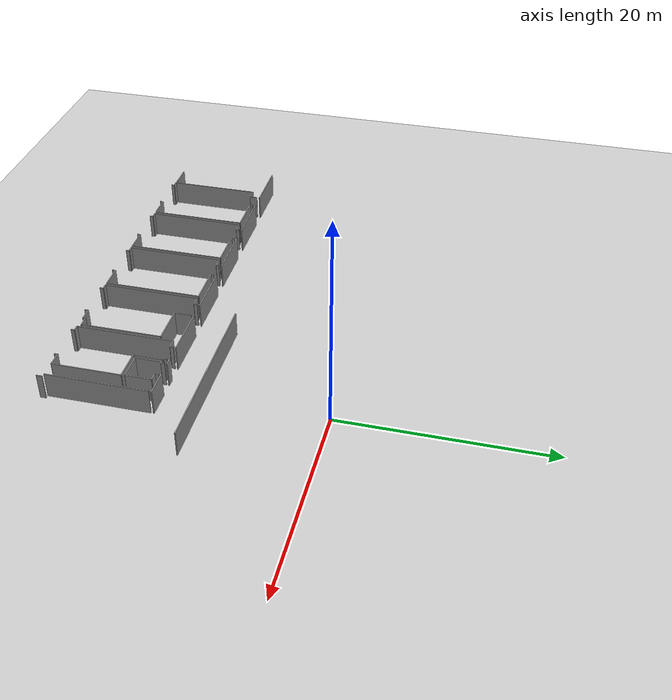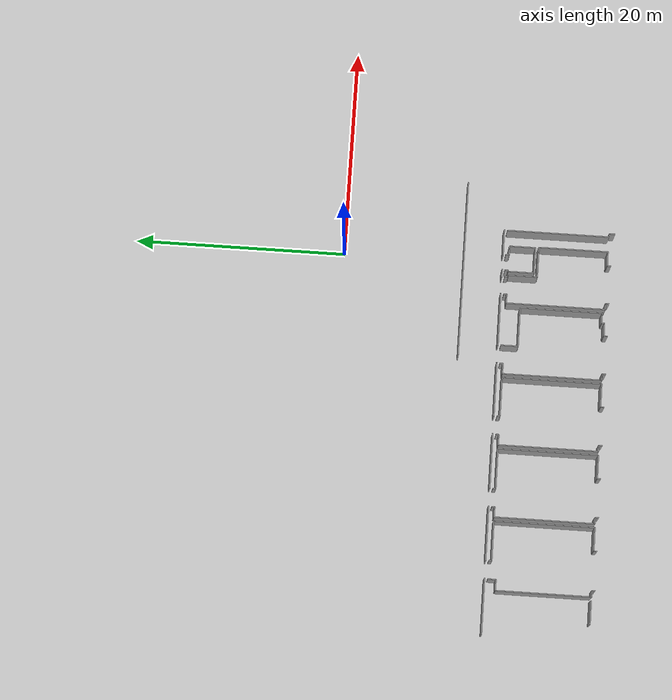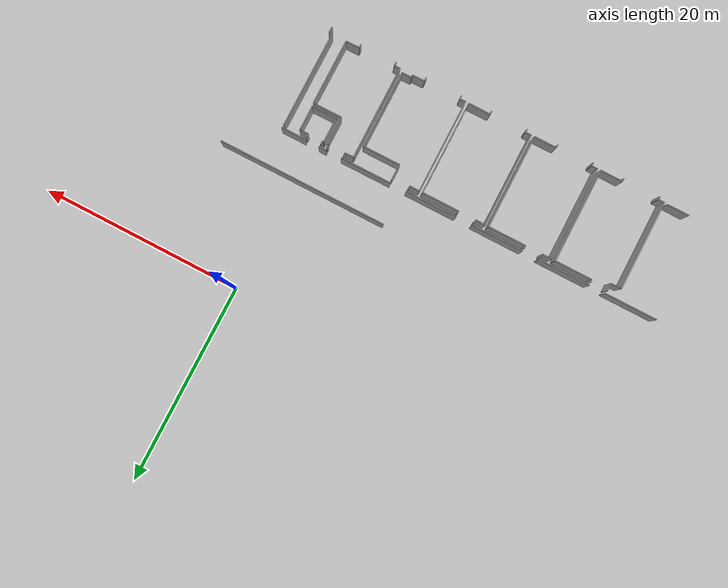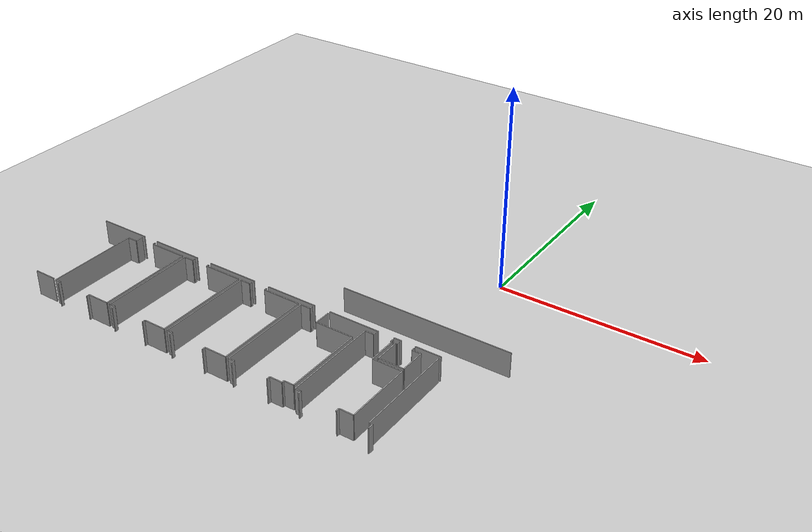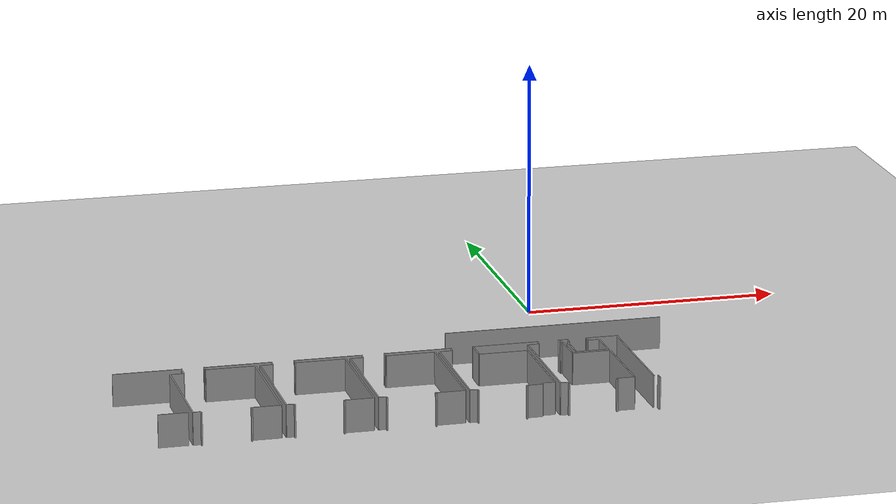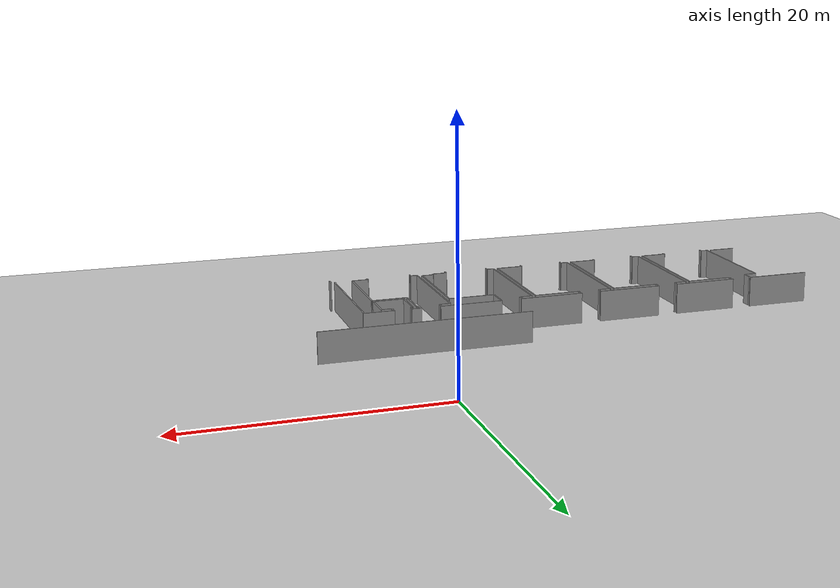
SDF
<sdf version="1.6">
 <world name="default">
  <model name="ground_plane">
   <static>1</static>
   <link name="link">
    <collision name="collision">
     <geometry><plane><normal>0 0 1</normal><size>100 100</size></plane></geometry>
     <surface><friction><ode><mu>100</mu><mu2>50</mu2></ode></friction></surface>
    </collision>
    <visual name="visual">
     <cast_shadows>0</cast_shadows>
     <geometry><plane><normal>0 0 1</normal><size>100 100</size></plane></geometry>
     <material>
      <script><uri>file://media/materials/scripts/gazebo.material</uri><name>Gazebo/Grey</name></script>
     </material>
    </visual>
   </link>
  </model>
  <model name="50045367">
   <static>1</static>
   <link name="Wall_307">
    <collision name="Wall_307_Collision">
     <geometry><box><size>2.2219116825 0.1 2.5</size></box></geometry>
     <pose>1.11095584125 0 1.25 0 0 0</pose>
    </collision>
    <visual name="Wall_307_Visual">
     <pose>1.11095584125 0 1.25 0 0 0</pose>
     <geometry><box><size>2.2219116825 0.1 2.5</size></box></geometry>
     <material>
      <script><uri>file://media/materials/scripts/gazebo.material</uri><name>Gazebo/Grey</name></script>
      <ambient>1 1 1 1</ambient>
     </material>
    </visual>
    <pose>21.3072310585 -50.686137507 0 0 0 3.14159265359</pose>
   </link>
   <link name="Wall_314">
    <collision name="Wall_314_Collision">
     <geometry><box><size>8.93782712536 0.1 2.5</size></box></geometry>
     <pose>4.46891356268 0 1.25 0 0 0</pose>
    </collision>
    <visual name="Wall_314_Visual">
     <pose>4.46891356268 0 1.25 0 0 0</pose>
     <geometry><box><size>8.93782712536 0.1 2.5</size></box></geometry>
     <material>
      <script><uri>file://media/materials/scripts/gazebo.material</uri><name>Gazebo/Grey</name></script>
      <ambient>1 1 1 1</ambient>
     </material>
    </visual>
    <pose>21.6329589918 -50.7195487576 0 0 0 1.57079632679</pose>
   </link>
   <link name="Wall_315">
    <collision name="Wall_315_Collision">
     <geometry><box><size>1.02749123431 0.1 2.5</size></box></geometry>
     <pose>0.513745617155 0 1.25 0 0 0</pose>
    </collision>
    <visual name="Wall_315_Visual">
     <pose>0.513745617155 0 1.25 0 0 0</pose>
     <geometry><box><size>1.02749123431 0.1 2.5</size></box></geometry>
     <material>
      <script><uri>file://media/materials/scripts/gazebo.material</uri><name>Gazebo/Grey</name></script>
      <ambient>1 1 1 1</ambient>
     </material>
    </visual>
    <pose>21.6329589918 -41.7817216322 0 0 0 0.0</pose>
   </link>
   <link name="Wall_316">
    <collision name="Wall_316_Collision">
     <geometry><box><size>0.768458763149 0.1 2.5</size></box></geometry>
     <pose>0.384229381574 0 1.25 0 0 0</pose>
    </collision>
    <visual name="Wall_316_Visual">
     <pose>0.384229381574 0 1.25 0 0 0</pose>
     <geometry><box><size>0.768458763149 0.1 2.5</size></box></geometry>
     <material>
      <script><uri>file://media/materials/scripts/gazebo.material</uri><name>Gazebo/Grey</name></script>
      <ambient>1 1 1 1</ambient>
     </material>
    </visual>
    <pose>22.6604502261 -41.7817216322 0 0 0 1.57079632679</pose>
   </link>
   <link name="Wall_317">
    <collision name="Wall_317_Collision">
     <geometry><box><size>0.274023070278 0.1 2.5</size></box></geometry>
     <pose>0.137011535139 0 1.25 0 0 0</pose>
    </collision>
    <visual name="Wall_317_Visual">
     <pose>0.137011535139 0 1.25 0 0 0</pose>
     <geometry><box><size>0.274023070278 0.1 2.5</size></box></geometry>
     <material>
      <script><uri>file://media/materials/scripts/gazebo.material</uri><name>Gazebo/Grey</name></script>
      <ambient>1 1 1 1</ambient>
     </material>
    </visual>
    <pose>24.3912292291 -41.013262869 0 0 0 -1.57079632679</pose>
   </link>
   <link name="Wall_318">
    <collision name="Wall_318_Collision">
     <geometry><box><size>3.72745058184 0.1 2.5</size></box></geometry>
     <pose>1.86372529092 0 1.25 0 0 0</pose>
    </collision>
    <visual name="Wall_318_Visual">
     <pose>1.86372529092 0 1.25 0 0 0</pose>
     <geometry><box><size>3.72745058184 0.1 2.5</size></box></geometry>
     <material>
      <script><uri>file://media/materials/scripts/gazebo.material</uri><name>Gazebo/Grey</name></script>
      <ambient>1 1 1 1</ambient>
     </material>
    </visual>
    <pose>24.3912292291 -41.2872859393 0 0 0 0.0</pose>
   </link>
   <link name="Wall_319">
    <collision name="Wall_319_Collision">
     <geometry><box><size>9.4199400376 0.1 2.5</size></box></geometry>
     <pose>4.7099700188 0 1.25 0 0 0</pose>
    </collision>
    <visual name="Wall_319_Visual">
     <pose>4.7099700188 0 1.25 0 0 0</pose>
     <geometry><box><size>9.4199400376 0.1 2.5</size></box></geometry>
     <material>
      <script><uri>file://media/materials/scripts/gazebo.material</uri><name>Gazebo/Grey</name></script>
      <ambient>1 1 1 1</ambient>
     </material>
    </visual>
    <pose>28.118679811 -41.2872859393 0 0 0 -1.57079632679</pose>
   </link>
   <link name="Wall_320">
    <collision name="Wall_320_Collision">
     <geometry><box><size>2.20577773261 0.1 2.5</size></box></geometry>
     <pose>1.1028888663 0 1.25 0 0 0</pose>
    </collision>
    <visual name="Wall_320_Visual">
     <pose>1.1028888663 0 1.25 0 0 0</pose>
     <geometry><box><size>2.20577773261 0.1 2.5</size></box></geometry>
     <material>
      <script><uri>file://media/materials/scripts/gazebo.material</uri><name>Gazebo/Grey</name></script>
      <ambient>1 1 1 1</ambient>
     </material>
    </visual>
    <pose>28.118679811 -50.7072259769 0 0 0 3.14159265359</pose>
   </link>
   <link name="Wall_321">
    <collision name="Wall_321_Collision">
     <geometry><box><size>0.315818893236 0.1 2.5</size></box></geometry>
     <pose>0.157909446618 0 1.25 0 0 0</pose>
    </collision>
    <visual name="Wall_321_Visual">
     <pose>0.157909446618 0 1.25 0 0 0</pose>
     <geometry><box><size>0.315818893236 0.1 2.5</size></box></geometry>
     <material>
      <script><uri>file://media/materials/scripts/gazebo.material</uri><name>Gazebo/Grey</name></script>
      <ambient>1 1 1 1</ambient>
     </material>
    </visual>
    <pose>25.9129020784 -50.7072259769 0 0 0 -1.57079632679</pose>
   </link>
   <link name="Wall_322">
    <collision name="Wall_322_Collision">
     <geometry><box><size>0.288632552467 0.1 2.5</size></box></geometry>
     <pose>0.144316276234 0 1.25 0 0 0</pose>
    </collision>
    <visual name="Wall_322_Visual">
     <pose>0.144316276234 0 1.25 0 0 0</pose>
     <geometry><box><size>0.288632552467 0.1 2.5</size></box></geometry>
     <material>
      <script><uri>file://media/materials/scripts/gazebo.material</uri><name>Gazebo/Grey</name></script>
      <ambient>1 1 1 1</ambient>
     </material>
    </visual>
    <pose>22.2309314498 -51.0230448702 0 0 0 1.57079632679</pose>
   </link>
   <link name="Wall_323">
    <collision name="Wall_323_Collision">
     <geometry><box><size>0.598157158184 0.1 2.5</size></box></geometry>
     <pose>0.299078579092 0 1.25 0 0 0</pose>
    </collision>
    <visual name="Wall_323_Visual">
     <pose>0.299078579092 0 1.25 0 0 0</pose>
     <geometry><box><size>0.598157158184 0.1 2.5</size></box></geometry>
     <material>
      <script><uri>file://media/materials/scripts/gazebo.material</uri><name>Gazebo/Grey</name></script>
      <ambient>1 1 1 1</ambient>
     </material>
    </visual>
    <pose>22.2309314498 -50.7344123177 0 0 0 3.11674117435</pose>
   </link>
   <link name="Wall_324">
    <collision name="Wall_324_Collision">
     <geometry><box><size>9.41053915341 0.1 2.5</size></box></geometry>
     <pose>4.70526957671 0 1.25 0 0 0</pose>
    </collision>
    <visual name="Wall_324_Visual">
     <pose>4.70526957671 0 1.25 0 0 0</pose>
     <geometry><box><size>9.41053915341 0.1 2.5</size></box></geometry>
     <material>
      <script><uri>file://media/materials/scripts/gazebo.material</uri><name>Gazebo/Grey</name></script>
      <ambient>1 1 1 1</ambient>
     </material>
    </visual>
    <pose>28.471975202 -50.6998577163 0 0 0 1.57079632679</pose>
   </link>
   <link name="Wall_325">
    <collision name="Wall_325_Collision">
     <geometry><box><size>0.966004370141 0.1 2.5</size></box></geometry>
     <pose>0.48300218507 0 1.25 0 0 0</pose>
    </collision>
    <visual name="Wall_325_Visual">
     <pose>0.48300218507 0 1.25 0 0 0</pose>
     <geometry><box><size>0.966004370141 0.1 2.5</size></box></geometry>
     <material>
      <script><uri>file://media/materials/scripts/gazebo.material</uri><name>Gazebo/Grey</name></script>
      <ambient>1 1 1 1</ambient>
     </material>
    </visual>
    <pose>28.471975202 -41.2893185629 0 0 0 0.0</pose>
   </link>
   <link name="Wall_326">
    <collision name="Wall_326_Collision">
     <geometry><box><size>0.283296915494 0.1 2.5</size></box></geometry>
     <pose>0.141648457747 0 1.25 0 0 0</pose>
    </collision>
    <visual name="Wall_326_Visual">
     <pose>0.141648457747 0 1.25 0 0 0</pose>
     <geometry><box><size>0.283296915494 0.1 2.5</size></box></geometry>
     <material>
      <script><uri>file://media/materials/scripts/gazebo.material</uri><name>Gazebo/Grey</name></script>
      <ambient>1 1 1 1</ambient>
     </material>
    </visual>
    <pose>29.4379795721 -41.2893185629 0 0 0 1.57079632679</pose>
   </link>
   <link name="Wall_327">
    <collision name="Wall_327_Collision">
     <geometry><box><size>0.27453122618 0.1 2.5</size></box></geometry>
     <pose>0.13726561309 0 1.25 0 0 0</pose>
    </collision>
    <visual name="Wall_327_Visual">
     <pose>0.13726561309 0 1.25 0 0 0</pose>
     <geometry><box><size>0.27453122618 0.1 2.5</size></box></geometry>
     <material>
      <script><uri>file://media/materials/scripts/gazebo.material</uri><name>Gazebo/Grey</name></script>
      <ambient>1 1 1 1</ambient>
     </material>
    </visual>
    <pose>31.1638040551 -41.0060216474 0 0 0 -1.57079632679</pose>
   </link>
   <link name="Wall_328">
    <collision name="Wall_328_Collision">
     <geometry><box><size>3.79376492708 0.1 2.5</size></box></geometry>
     <pose>1.89688246354 0 1.25 0 0 0</pose>
    </collision>
    <visual name="Wall_328_Visual">
     <pose>1.89688246354 0 1.25 0 0 0</pose>
     <geometry><box><size>3.79376492708 0.1 2.5</size></box></geometry>
     <material>
      <script><uri>file://media/materials/scripts/gazebo.material</uri><name>Gazebo/Grey</name></script>
      <ambient>1 1 1 1</ambient>
     </material>
    </visual>
    <pose>31.1638040551 -41.2805528736 0 0 0 0.0</pose>
   </link>
   <link name="Wall_329">
    <collision name="Wall_329_Collision">
     <geometry><box><size>9.42946796077 0.1 2.5</size></box></geometry>
     <pose>4.71473398039 0 1.25 0 0 0</pose>
    </collision>
    <visual name="Wall_329_Visual">
     <pose>4.71473398039 0 1.25 0 0 0</pose>
     <geometry><box><size>9.42946796077 0.1 2.5</size></box></geometry>
     <material>
      <script><uri>file://media/materials/scripts/gazebo.material</uri><name>Gazebo/Grey</name></script>
      <ambient>1 1 1 1</ambient>
     </material>
    </visual>
    <pose>34.9575689822 -41.2805528736 0 0 0 -1.57079632679</pose>
   </link>
   <link name="Wall_330">
    <collision name="Wall_330_Collision">
     <geometry><box><size>2.22927994309 0.1 2.5</size></box></geometry>
     <pose>1.11463997154 0 1.25 0 0 0</pose>
    </collision>
    <visual name="Wall_330_Visual">
     <pose>1.11463997154 0 1.25 0 0 0</pose>
     <geometry><box><size>2.22927994309 0.1 2.5</size></box></geometry>
     <material>
      <script><uri>file://media/materials/scripts/gazebo.material</uri><name>Gazebo/Grey</name></script>
      <ambient>1 1 1 1</ambient>
     </material>
    </visual>
    <pose>34.9575689822 -50.7100208344 0 0 0 3.14159265359</pose>
   </link>
   <link name="Wall_331">
    <collision name="Wall_331_Collision">
     <geometry><box><size>0.319630062503 0.1 2.5</size></box></geometry>
     <pose>0.159815031252 0 1.25 0 0 0</pose>
    </collision>
    <visual name="Wall_331_Visual">
     <pose>0.159815031252 0 1.25 0 0 0</pose>
     <geometry><box><size>0.319630062503 0.1 2.5</size></box></geometry>
     <material>
      <script><uri>file://media/materials/scripts/gazebo.material</uri><name>Gazebo/Grey</name></script>
      <ambient>1 1 1 1</ambient>
     </material>
    </visual>
    <pose>32.7282890391 -50.7100208344 0 0 0 -1.57079632679</pose>
   </link>
   <link name="Wall_332">
    <collision name="Wall_332_Collision">
     <geometry><box><size>0.339194064739 0.1 2.5</size></box></geometry>
     <pose>0.16959703237 0 1.25 0 0 0</pose>
    </collision>
    <visual name="Wall_332_Visual">
     <pose>0.16959703237 0 1.25 0 0 0</pose>
     <geometry><box><size>0.339194064739 0.1 2.5</size></box></geometry>
     <material>
      <script><uri>file://media/materials/scripts/gazebo.material</uri><name>Gazebo/Grey</name></script>
      <ambient>1 1 1 1</ambient>
     </material>
    </visual>
    <pose>29.0688043092 -51.0296508969 0 0 0 1.57079632679</pose>
   </link>
   <link name="Wall_333">
    <collision name="Wall_333_Collision">
     <geometry><box><size>0.596903141045 0.1 2.5</size></box></geometry>
     <pose>0.298451570522 0 1.25 0 0 0</pose>
    </collision>
    <visual name="Wall_333_Visual">
     <pose>0.298451570522 0 1.25 0 0 0</pose>
     <geometry><box><size>0.596903141045 0.1 2.5</size></box></geometry>
     <material>
      <script><uri>file://media/materials/scripts/gazebo.material</uri><name>Gazebo/Grey</name></script>
      <ambient>1 1 1 1</ambient>
     </material>
    </visual>
    <pose>29.0688043092 -50.6904568322 0 0 0 -3.1258425725</pose>
   </link>
   <link name="Wall_334">
    <collision name="Wall_334_Collision">
     <geometry><box><size>9.40609278927 0.1 2.5</size></box></geometry>
     <pose>4.70304639463 0 1.25 0 0 0</pose>
    </collision>
    <visual name="Wall_334_Visual">
     <pose>4.70304639463 0 1.25 0 0 0</pose>
     <geometry><box><size>9.40609278927 0.1 2.5</size></box></geometry>
     <material>
      <script><uri>file://media/materials/scripts/gazebo.material</uri><name>Gazebo/Grey</name></script>
      <ambient>1 1 1 1</ambient>
     </material>
    </visual>
    <pose>35.30133645 -50.6950302353 0 0 0 1.57079632679</pose>
   </link>
   <link name="Wall_335">
    <collision name="Wall_335_Collision">
     <geometry><box><size>0.982773514914 0.1 2.5</size></box></geometry>
     <pose>0.491386757457 0 1.25 0 0 0</pose>
    </collision>
    <visual name="Wall_335_Visual">
     <pose>0.491386757457 0 1.25 0 0 0</pose>
     <geometry><box><size>0.982773514914 0.1 2.5</size></box></geometry>
     <material>
      <script><uri>file://media/materials/scripts/gazebo.material</uri><name>Gazebo/Grey</name></script>
      <ambient>1 1 1 1</ambient>
     </material>
    </visual>
    <pose>35.30133645 -41.288937446 0 0 0 0.0</pose>
   </link>
   <link name="Wall_336">
    <collision name="Wall_336_Collision">
     <geometry><box><size>0.27567457696 0.1 2.5</size></box></geometry>
     <pose>0.13783728848 0 1.25 0 0 0</pose>
    </collision>
    <visual name="Wall_336_Visual">
     <pose>0.13783728848 0 1.25 0 0 0</pose>
     <geometry><box><size>0.27567457696 0.1 2.5</size></box></geometry>
     <material>
      <script><uri>file://media/materials/scripts/gazebo.material</uri><name>Gazebo/Grey</name></script>
      <ambient>1 1 1 1</ambient>
     </material>
    </visual>
    <pose>36.2841099649 -41.288937446 0 0 0 1.57079632679</pose>
   </link>
   <link name="Wall_337">
    <collision name="Wall_337_Collision">
     <geometry><box><size>0.283296915494 0.1 2.5</size></box></geometry>
     <pose>0.141648457747 0 1.25 0 0 0</pose>
    </collision>
    <visual name="Wall_337_Visual">
     <pose>0.141648457747 0 1.25 0 0 0</pose>
     <geometry><box><size>0.283296915494 0.1 2.5</size></box></geometry>
     <material>
      <script><uri>file://media/materials/scripts/gazebo.material</uri><name>Gazebo/Grey</name></script>
      <ambient>1 1 1 1</ambient>
     </material>
    </visual>
    <pose>38.0452512831 -41.013262869 0 0 0 -1.57079632679</pose>
   </link>
   <link name="Wall_338">
    <collision name="Wall_338_Collision">
     <geometry><box><size>3.73126175111 0.1 2.5</size></box></geometry>
     <pose>1.86563087555 0 1.25 0 0 0</pose>
    </collision>
    <visual name="Wall_338_Visual">
     <pose>1.86563087555 0 1.25 0 0 0</pose>
     <geometry><box><size>3.73126175111 0.1 2.5</size></box></geometry>
     <material>
      <script><uri>file://media/materials/scripts/gazebo.material</uri><name>Gazebo/Grey</name></script>
      <ambient>1 1 1 1</ambient>
     </material>
    </visual>
    <pose>38.0452512831 -41.2965597845 0 0 0 0.0</pose>
   </link>
   <link name="Wall_339">
    <collision name="Wall_339_Collision">
     <geometry><box><size>9.39173738503 0.1 2.5</size></box></geometry>
     <pose>4.69586869251 0 1.25 0 0 0</pose>
    </collision>
    <visual name="Wall_339_Visual">
     <pose>4.69586869251 0 1.25 0 0 0</pose>
     <geometry><box><size>9.39173738503 0.1 2.5</size></box></geometry>
     <material>
      <script><uri>file://media/materials/scripts/gazebo.material</uri><name>Gazebo/Grey</name></script>
      <ambient>1 1 1 1</ambient>
     </material>
    </visual>
    <pose>41.7765130342 -41.2965597845 0 0 0 -1.57079632679</pose>
   </link>
   <link name="Wall_340">
    <collision name="Wall_340_Collision">
     <geometry><box><size>2.22775547538 0.1 2.5</size></box></geometry>
     <pose>1.11387773769 0 1.25 0 0 0</pose>
    </collision>
    <visual name="Wall_340_Visual">
     <pose>1.11387773769 0 1.25 0 0 0</pose>
     <geometry><box><size>2.22775547538 0.1 2.5</size></box></geometry>
     <material>
      <script><uri>file://media/materials/scripts/gazebo.material</uri><name>Gazebo/Grey</name></script>
      <ambient>1 1 1 1</ambient>
     </material>
    </visual>
    <pose>41.7765130342 -50.6882971696 0 0 0 3.14159265359</pose>
   </link>
   <link name="Wall_341">
    <collision name="Wall_341_Collision">
     <geometry><box><size>0.341353727324 0.1 2.5</size></box></geometry>
     <pose>0.170676863662 0 1.25 0 0 0</pose>
    </collision>
    <visual name="Wall_341_Visual">
     <pose>0.170676863662 0 1.25 0 0 0</pose>
     <geometry><box><size>0.341353727324 0.1 2.5</size></box></geometry>
     <material>
      <script><uri>file://media/materials/scripts/gazebo.material</uri><name>Gazebo/Grey</name></script>
      <ambient>1 1 1 1</ambient>
     </material>
    </visual>
    <pose>39.5487575588 -50.6882971696 0 0 0 -1.57079632679</pose>
   </link>
   <link name="Wall_342">
    <collision name="Wall_342_Collision">
     <geometry><box><size>0.333096193912 0.1 2.5</size></box></geometry>
     <pose>0.166548096956 0 1.25 0 0 0</pose>
    </collision>
    <visual name="Wall_342_Visual">
     <pose>0.166548096956 0 1.25 0 0 0</pose>
     <geometry><box><size>0.333096193912 0.1 2.5</size></box></geometry>
     <material>
      <script><uri>file://media/materials/scripts/gazebo.material</uri><name>Gazebo/Grey</name></script>
      <ambient>1 1 1 1</ambient>
     </material>
    </visual>
    <pose>35.8797449057 -51.0296508969 0 0 0 1.57079632679</pose>
   </link>
   <link name="Wall_343">
    <collision name="Wall_343_Collision">
     <geometry><box><size>0.578410464673 0.1 2.5</size></box></geometry>
     <pose>0.289205232337 0 1.25 0 0 0</pose>
    </collision>
    <visual name="Wall_343_Visual">
     <pose>0.289205232337 0 1.25 0 0 0</pose>
     <geometry><box><size>0.578410464673 0.1 2.5</size></box></geometry>
     <material>
      <script><uri>file://media/materials/scripts/gazebo.material</uri><name>Gazebo/Grey</name></script>
      <ambient>1 1 1 1</ambient>
     </material>
    </visual>
    <pose>35.8797449057 -50.696554703 0 0 0 3.13895703483</pose>
   </link>
   <link name="Wall_344">
    <collision name="Wall_344_Collision">
     <geometry><box><size>9.40431424361 0.1 2.5</size></box></geometry>
     <pose>4.7021571218 0 1.25 0 0 0</pose>
    </collision>
    <visual name="Wall_344_Visual">
     <pose>4.7021571218 0 1.25 0 0 0</pose>
     <geometry><box><size>9.40431424361 0.1 2.5</size></box></geometry>
     <material>
      <script><uri>file://media/materials/scripts/gazebo.material</uri><name>Gazebo/Grey</name></script>
      <ambient>1 1 1 1</ambient>
     </material>
    </visual>
    <pose>42.1074495655 -50.7008740282 0 0 0 1.57079632679</pose>
   </link>
   <link name="Wall_345">
    <collision name="Wall_345_Collision">
     <geometry><box><size>1.00043193252 0.1 2.5</size></box></geometry>
     <pose>0.500215966258 0 1.25 0 0 0</pose>
    </collision>
    <visual name="Wall_345_Visual">
     <pose>0.500215966258 0 1.25 0 0 0</pose>
     <geometry><box><size>1.00043193252 0.1 2.5</size></box></geometry>
     <material>
      <script><uri>file://media/materials/scripts/gazebo.material</uri><name>Gazebo/Grey</name></script>
      <ambient>1 1 1 1</ambient>
     </material>
    </visual>
    <pose>42.1074495655 -41.2965597845 0 0 0 0.0</pose>
   </link>
   <link name="Wall_346">
    <collision name="Wall_346_Collision">
     <geometry><box><size>0.312388840896 0.1 2.5</size></box></geometry>
     <pose>0.156194420448 0 1.25 0 0 0</pose>
    </collision>
    <visual name="Wall_346_Visual">
     <pose>0.156194420448 0 1.25 0 0 0</pose>
     <geometry><box><size>0.312388840896 0.1 2.5</size></box></geometry>
     <material>
      <script><uri>file://media/materials/scripts/gazebo.material</uri><name>Gazebo/Grey</name></script>
      <ambient>1 1 1 1</ambient>
     </material>
    </visual>
    <pose>43.107881498 -41.2965597845 0 0 0 1.57079632679</pose>
   </link>
   <link name="Wall_347">
    <collision name="Wall_347_Collision">
     <geometry><box><size>1.64363026577 0.1 2.5</size></box></geometry>
     <pose>0.821815132883 0 1.25 0 0 0</pose>
    </collision>
    <visual name="Wall_347_Visual">
     <pose>0.821815132883 0 1.25 0 0 0</pose>
     <geometry><box><size>1.64363026577 0.1 2.5</size></box></geometry>
     <material>
      <script><uri>file://media/materials/scripts/gazebo.material</uri><name>Gazebo/Grey</name></script>
      <ambient>1 1 1 1</ambient>
     </material>
    </visual>
    <pose>44.8460287616 -40.9841709436 0 0 0 -1.57079632679</pose>
   </link>
   <link name="Wall_348">
    <collision name="Wall_348_Collision">
     <geometry><box><size>3.742187103 0.1 2.5</size></box></geometry>
     <pose>1.8710935515 0 1.25 0 0 0</pose>
    </collision>
    <visual name="Wall_348_Visual">
     <pose>1.8710935515 0 1.25 0 0 0</pose>
     <geometry><box><size>3.742187103 0.1 2.5</size></box></geometry>
     <material>
      <script><uri>file://media/materials/scripts/gazebo.material</uri><name>Gazebo/Grey</name></script>
      <ambient>1 1 1 1</ambient>
     </material>
    </visual>
    <pose>44.8460287616 -42.6278012094 0 0 0 0.0</pose>
   </link>
   <link name="Wall_349">
    <collision name="Wall_349_Collision">
     <geometry><box><size>7.78444026627 0.1 2.5</size></box></geometry>
     <pose>3.89222013314 0 1.25 0 0 0</pose>
    </collision>
    <visual name="Wall_349_Visual">
     <pose>3.89222013314 0 1.25 0 0 0</pose>
     <geometry><box><size>7.78444026627 0.1 2.5</size></box></geometry>
     <material>
      <script><uri>file://media/materials/scripts/gazebo.material</uri><name>Gazebo/Grey</name></script>
      <ambient>1 1 1 1</ambient>
     </material>
    </visual>
    <pose>48.5882158646 -42.6278012094 0 0 0 -1.57079632679</pose>
   </link>
   <link name="Wall_350">
    <collision name="Wall_350_Collision">
     <geometry><box><size>0.977056761014 0.1 2.5</size></box></geometry>
     <pose>0.488528380507 0 1.25 0 0 0</pose>
    </collision>
    <visual name="Wall_350_Visual">
     <pose>0.488528380507 0 1.25 0 0 0</pose>
     <geometry><box><size>0.977056761014 0.1 2.5</size></box></geometry>
     <material>
      <script><uri>file://media/materials/scripts/gazebo.material</uri><name>Gazebo/Grey</name></script>
      <ambient>1 1 1 1</ambient>
     </material>
    </visual>
    <pose>48.5882158646 -50.4122414757 0 0 0 3.14159265359</pose>
   </link>
   <link name="Wall_351">
    <collision name="Wall_351_Collision">
     <geometry><box><size>0.254204990091 0.1 2.5</size></box></geometry>
     <pose>0.127102495045 0 1.25 0 0 0</pose>
    </collision>
    <visual name="Wall_351_Visual">
     <pose>0.127102495045 0 1.25 0 0 0</pose>
     <geometry><box><size>0.254204990091 0.1 2.5</size></box></geometry>
     <material>
      <script><uri>file://media/materials/scripts/gazebo.material</uri><name>Gazebo/Grey</name></script>
      <ambient>1 1 1 1</ambient>
     </material>
    </visual>
    <pose>47.6111591036 -50.4122414757 0 0 0 -1.57079632679</pose>
   </link>
   <link name="Wall_352">
    <collision name="Wall_352_Collision">
     <geometry><box><size>1.23469180345 0.1 2.5</size></box></geometry>
     <pose>0.617345901723 0 1.25 0 0 0</pose>
    </collision>
    <visual name="Wall_352_Visual">
     <pose>0.617345901723 0 1.25 0 0 0</pose>
     <geometry><box><size>1.23469180345 0.1 2.5</size></box></geometry>
     <material>
      <script><uri>file://media/materials/scripts/gazebo.material</uri><name>Gazebo/Grey</name></script>
      <ambient>1 1 1 1</ambient>
     </material>
    </visual>
    <pose>47.6111591036 -50.6664464658 0 0 0 3.14159265359</pose>
   </link>
   <link name="Wall_353">
    <collision name="Wall_353_Collision">
     <geometry><box><size>0.363204431119 0.1 2.5</size></box></geometry>
     <pose>0.18160221556 0 1.25 0 0 0</pose>
    </collision>
    <visual name="Wall_353_Visual">
     <pose>0.18160221556 0 1.25 0 0 0</pose>
     <geometry><box><size>0.363204431119 0.1 2.5</size></box></geometry>
     <material>
      <script><uri>file://media/materials/scripts/gazebo.material</uri><name>Gazebo/Grey</name></script>
      <ambient>1 1 1 1</ambient>
     </material>
    </visual>
    <pose>46.3764673002 -50.6664464658 0 0 0 -1.57079632679</pose>
   </link>
   <link name="Wall_354">
    <collision name="Wall_354_Collision">
     <geometry><box><size>0.341353727324 0.1 2.5</size></box></geometry>
     <pose>0.170676863662 0 1.25 0 0 0</pose>
    </collision>
    <visual name="Wall_354_Visual">
     <pose>0.170676863662 0 1.25 0 0 0</pose>
     <geometry><box><size>0.341353727324 0.1 2.5</size></box></geometry>
     <material>
      <script><uri>file://media/materials/scripts/gazebo.material</uri><name>Gazebo/Grey</name></script>
      <ambient>1 1 1 1</ambient>
     </material>
    </visual>
    <pose>42.6947507495 -51.0296508969 0 0 0 1.57079632679</pose>
   </link>
   <link name="Wall_355">
    <collision name="Wall_355_Collision">
     <geometry><box><size>0.58743583318 0.1 2.5</size></box></geometry>
     <pose>0.29371791659 0 1.25 0 0 0</pose>
    </collision>
    <visual name="Wall_355_Visual">
     <pose>0.29371791659 0 1.25 0 0 0</pose>
     <geometry><box><size>0.58743583318 0.1 2.5</size></box></geometry>
     <material>
      <script><uri>file://media/materials/scripts/gazebo.material</uri><name>Gazebo/Grey</name></script>
      <ambient>1 1 1 1</ambient>
     </material>
    </visual>
    <pose>42.6947507495 -50.6882971696 0 0 0 -3.12018126039</pose>
   </link>
   <link name="Wall_356">
    <collision name="Wall_356_Collision">
     <geometry><box><size>9.38170130596 0.1 2.5</size></box></geometry>
     <pose>4.69085065298 0 1.25 0 0 0</pose>
    </collision>
    <visual name="Wall_356_Visual">
     <pose>4.69085065298 0 1.25 0 0 0</pose>
     <geometry><box><size>9.38170130596 0.1 2.5</size></box></geometry>
     <material>
      <script><uri>file://media/materials/scripts/gazebo.material</uri><name>Gazebo/Grey</name></script>
      <ambient>1 1 1 1</ambient>
     </material>
    </visual>
    <pose>48.9422734895 -50.6710198689 0 0 0 1.57079632679</pose>
   </link>
   <link name="Wall_357">
    <collision name="Wall_357_Collision">
     <geometry><box><size>0.869835865644 0.1 2.5</size></box></geometry>
     <pose>0.434917932822 0 1.25 0 0 0</pose>
    </collision>
    <visual name="Wall_357_Visual">
     <pose>0.434917932822 0 1.25 0 0 0</pose>
     <geometry><box><size>0.869835865644 0.1 2.5</size></box></geometry>
     <material>
      <script><uri>file://media/materials/scripts/gazebo.material</uri><name>Gazebo/Grey</name></script>
      <ambient>1 1 1 1</ambient>
     </material>
    </visual>
    <pose>48.9422734895 -41.2893185629 0 0 0 0.0</pose>
   </link>
   <link name="Wall_358">
    <collision name="Wall_358_Collision">
     <geometry><box><size>0.312388840896 0.1 2.5</size></box></geometry>
     <pose>0.156194420448 0 1.25 0 0 0</pose>
    </collision>
    <visual name="Wall_358_Visual">
     <pose>0.156194420448 0 1.25 0 0 0</pose>
     <geometry><box><size>0.312388840896 0.1 2.5</size></box></geometry>
     <material>
      <script><uri>file://media/materials/scripts/gazebo.material</uri><name>Gazebo/Grey</name></script>
      <ambient>1 1 1 1</ambient>
     </material>
    </visual>
    <pose>49.8121093552 -41.2893185629 0 0 0 1.57079632679</pose>
   </link>
   <link name="Wall_359">
    <collision name="Wall_359_Collision">
     <geometry><box><size>0.306672086996 0.1 2.5</size></box></geometry>
     <pose>0.153336043498 0 1.25 0 0 0</pose>
    </collision>
    <visual name="Wall_359_Visual">
     <pose>0.153336043498 0 1.25 0 0 0</pose>
     <geometry><box><size>0.306672086996 0.1 2.5</size></box></geometry>
     <material>
      <script><uri>file://media/materials/scripts/gazebo.material</uri><name>Gazebo/Grey</name></script>
      <ambient>1 1 1 1</ambient>
     </material>
    </visual>
    <pose>51.543650592 -40.976929722 0 0 0 -1.57079632679</pose>
   </link>
   <link name="Wall_360">
    <collision name="Wall_360_Collision">
     <geometry><box><size>0.132628690482 0.1 2.5</size></box></geometry>
     <pose>0.0663143452411 0 1.25 0 0 0</pose>
    </collision>
    <visual name="Wall_360_Visual">
     <pose>0.0663143452411 0 1.25 0 0 0</pose>
     <geometry><box><size>0.132628690482 0.1 2.5</size></box></geometry>
     <material>
      <script><uri>file://media/materials/scripts/gazebo.material</uri><name>Gazebo/Grey</name></script>
      <ambient>1 1 1 1</ambient>
     </material>
    </visual>
    <pose>51.543650592 -41.283601809 0 0 0 0.0</pose>
   </link>
   <link name="Wall_361">
    <collision name="Wall_361_Collision">
     <geometry><box><size>2.80514761929 0.1 2.5</size></box></geometry>
     <pose>1.40257380964 0 1.25 0 0 0</pose>
    </collision>
    <visual name="Wall_361_Visual">
     <pose>1.40257380964 0 1.25 0 0 0</pose>
     <geometry><box><size>2.80514761929 0.1 2.5</size></box></geometry>
     <material>
      <script><uri>file://media/materials/scripts/gazebo.material</uri><name>Gazebo/Grey</name></script>
      <ambient>1 1 1 1</ambient>
     </material>
    </visual>
    <pose>51.6762792825 -41.283601809 0 0 0 -1.57079632679</pose>
   </link>
   <link name="Wall_362">
    <collision name="Wall_362_Collision">
     <geometry><box><size>2.89305859038 0.1 2.5</size></box></geometry>
     <pose>1.44652929519 0 1.25 0 0 0</pose>
    </collision>
    <visual name="Wall_362_Visual">
     <pose>1.44652929519 0 1.25 0 0 0</pose>
     <geometry><box><size>2.89305859038 0.1 2.5</size></box></geometry>
     <material>
      <script><uri>file://media/materials/scripts/gazebo.material</uri><name>Gazebo/Grey</name></script>
      <ambient>1 1 1 1</ambient>
     </material>
    </visual>
    <pose>51.6762792825 -44.0887494283 0 0 0 0.0</pose>
   </link>
   <link name="Wall_363">
    <collision name="Wall_363_Collision">
     <geometry><box><size>6.58455714213 0.1 2.5</size></box></geometry>
     <pose>3.29227857107 0 1.25 0 0 0</pose>
    </collision>
    <visual name="Wall_363_Visual">
     <pose>3.29227857107 0 1.25 0 0 0</pose>
     <geometry><box><size>6.58455714213 0.1 2.5</size></box></geometry>
     <material>
      <script><uri>file://media/materials/scripts/gazebo.material</uri><name>Gazebo/Grey</name></script>
      <ambient>1 1 1 1</ambient>
     </material>
    </visual>
    <pose>54.5693378729 -44.0887494283 0 0 0 -1.57079632679</pose>
   </link>
   <link name="Wall_364">
    <collision name="Wall_364_Collision">
     <geometry><box><size>1.37189389705 0.1 2.5</size></box></geometry>
     <pose>0.685946948524 0 1.25 0 0 0</pose>
    </collision>
    <visual name="Wall_364_Visual">
     <pose>0.685946948524 0 1.25 0 0 0</pose>
     <geometry><box><size>1.37189389705 0.1 2.5</size></box></geometry>
     <material>
      <script><uri>file://media/materials/scripts/gazebo.material</uri><name>Gazebo/Grey</name></script>
      <ambient>1 1 1 1</ambient>
     </material>
    </visual>
    <pose>54.5693378729 -50.6733065705 0 0 0 3.14159265359</pose>
   </link>
   <link name="Wall_365">
    <collision name="Wall_365_Collision">
     <geometry><box><size>0.34859494893 0.1 2.5</size></box></geometry>
     <pose>0.174297474465 0 1.25 0 0 0</pose>
    </collision>
    <visual name="Wall_365_Visual">
     <pose>0.174297474465 0 1.25 0 0 0</pose>
     <geometry><box><size>0.34859494893 0.1 2.5</size></box></geometry>
     <material>
      <script><uri>file://media/materials/scripts/gazebo.material</uri><name>Gazebo/Grey</name></script>
      <ambient>1 1 1 1</ambient>
     </material>
    </visual>
    <pose>53.1974439758 -50.6733065705 0 0 0 -1.57079632679</pose>
   </link>
   <link name="Wall_366">
    <collision name="Wall_366_Collision">
     <geometry><box><size>0.329539102597 0.1 2.5</size></box></geometry>
     <pose>0.164769551298 0 1.25 0 0 0</pose>
    </collision>
    <visual name="Wall_366_Visual">
     <pose>0.164769551298 0 1.25 0 0 0</pose>
     <geometry><box><size>0.329539102597 0.1 2.5</size></box></geometry>
     <material>
      <script><uri>file://media/materials/scripts/gazebo.material</uri><name>Gazebo/Grey</name></script>
      <ambient>1 1 1 1</ambient>
     </material>
    </visual>
    <pose>49.5295746735 -51.0219015194 0 0 0 1.57079632679</pose>
   </link>
   <link name="Wall_367">
    <collision name="Wall_367_Collision">
     <geometry><box><size>0.587688850568 0.1 2.5</size></box></geometry>
     <pose>0.293844425284 0 1.25 0 0 0</pose>
    </collision>
    <visual name="Wall_367_Visual">
     <pose>0.293844425284 0 1.25 0 0 0</pose>
     <geometry><box><size>0.587688850568 0.1 2.5</size></box></geometry>
     <material>
      <script><uri>file://media/materials/scripts/gazebo.material</uri><name>Gazebo/Grey</name></script>
      <ambient>1 1 1 1</ambient>
     </material>
    </visual>
    <pose>49.5295746735 -50.6923624168 0 0 0 3.10526859886</pose>
   </link>
   <link name="Wall_368">
    <collision name="Wall_368_Collision">
     <geometry><box><size>2.4771329844 0.1 2.5</size></box></geometry>
     <pose>1.2385664922 0 1.25 0 0 0</pose>
    </collision>
    <visual name="Wall_368_Visual">
     <pose>1.2385664922 0 1.25 0 0 0</pose>
     <geometry><box><size>2.4771329844 0.1 2.5</size></box></geometry>
     <material>
      <script><uri>file://media/materials/scripts/gazebo.material</uri><name>Gazebo/Grey</name></script>
      <ambient>1 1 1 1</ambient>
     </material>
    </visual>
    <pose>52.0274150109 -43.773438691 0 0 0 1.57079632679</pose>
   </link>
   <link name="Wall_369">
    <collision name="Wall_369_Collision">
     <geometry><box><size>0.135169469993 0.1 2.5</size></box></geometry>
     <pose>0.0675847349967 0 1.25 0 0 0</pose>
    </collision>
    <visual name="Wall_369_Visual">
     <pose>0.0675847349967 0 1.25 0 0 0</pose>
     <geometry><box><size>0.135169469993 0.1 2.5</size></box></geometry>
     <material>
      <script><uri>file://media/materials/scripts/gazebo.material</uri><name>Gazebo/Grey</name></script>
      <ambient>1 1 1 1</ambient>
     </material>
    </visual>
    <pose>52.0274150109 -41.2963057066 0 0 0 0.0</pose>
   </link>
   <link name="Wall_370">
    <collision name="Wall_370_Collision">
     <geometry><box><size>0.33487473957 0.1 2.5</size></box></geometry>
     <pose>0.167437369785 0 1.25 0 0 0</pose>
    </collision>
    <visual name="Wall_370_Visual">
     <pose>0.167437369785 0 1.25 0 0 0</pose>
     <geometry><box><size>0.33487473957 0.1 2.5</size></box></geometry>
     <material>
      <script><uri>file://media/materials/scripts/gazebo.material</uri><name>Gazebo/Grey</name></script>
      <ambient>1 1 1 1</ambient>
     </material>
    </visual>
    <pose>52.1625844809 -41.2963057066 0 0 0 1.57079632679</pose>
   </link>
   <link name="Wall_371">
    <collision name="Wall_371_Collision">
     <geometry><box><size>0.336780324203 0.1 2.5</size></box></geometry>
     <pose>0.168390162102 0 1.25 0 0 0</pose>
    </collision>
    <visual name="Wall_371_Visual">
     <pose>0.168390162102 0 1.25 0 0 0</pose>
     <geometry><box><size>0.336780324203 0.1 2.5</size></box></geometry>
     <material>
      <script><uri>file://media/materials/scripts/gazebo.material</uri><name>Gazebo/Grey</name></script>
      <ambient>1 1 1 1</ambient>
     </material>
    </visual>
    <pose>53.6544031709 -40.961430967 0 0 0 -1.57079632679</pose>
   </link>
   <link name="Wall_372">
    <collision name="Wall_372_Collision">
     <geometry><box><size>0.857131968088 0.1 2.5</size></box></geometry>
     <pose>0.428565984044 0 1.25 0 0 0</pose>
    </collision>
    <visual name="Wall_372_Visual">
     <pose>0.428565984044 0 1.25 0 0 0</pose>
     <geometry><box><size>0.857131968088 0.1 2.5</size></box></geometry>
     <material>
      <script><uri>file://media/materials/scripts/gazebo.material</uri><name>Gazebo/Grey</name></script>
      <ambient>1 1 1 1</ambient>
     </material>
    </visual>
    <pose>53.6544031709 -41.2982112912 0 0 0 0.0</pose>
   </link>
   <link name="Wall_373">
    <collision name="Wall_373_Collision">
     <geometry><box><size>2.47205142538 0.1 2.5</size></box></geometry>
     <pose>1.23602571269 0 1.25 0 0 0</pose>
    </collision>
    <visual name="Wall_373_Visual">
     <pose>1.23602571269 0 1.25 0 0 0</pose>
     <geometry><box><size>2.47205142538 0.1 2.5</size></box></geometry>
     <material>
      <script><uri>file://media/materials/scripts/gazebo.material</uri><name>Gazebo/Grey</name></script>
      <ambient>1 1 1 1</ambient>
     </material>
    </visual>
    <pose>54.511535139 -41.2982112912 0 0 0 -1.57079632679</pose>
   </link>
   <link name="Wall_374">
    <collision name="Wall_374_Collision">
     <geometry><box><size>2.48412215831 0.1 2.5</size></box></geometry>
     <pose>1.24206107916 0 1.25 0 0 0</pose>
    </collision>
    <visual name="Wall_374_Visual">
     <pose>1.24206107916 0 1.25 0 0 0</pose>
     <geometry><box><size>2.48412215831 0.1 2.5</size></box></geometry>
     <material>
      <script><uri>file://media/materials/scripts/gazebo.material</uri><name>Gazebo/Grey</name></script>
      <ambient>1 1 1 1</ambient>
     </material>
    </visual>
    <pose>54.511535139 -43.7702627166 0 0 0 -3.1403141435</pose>
   </link>
   <link name="Wall_375">
    <collision name="Wall_375_Collision">
     <geometry><box><size>9.7094618629 0.1 2.5</size></box></geometry>
     <pose>4.85473093145 0 1.25 0 0 0</pose>
    </collision>
    <visual name="Wall_375_Visual">
     <pose>4.85473093145 0 1.25 0 0 0</pose>
     <geometry><box><size>9.7094618629 0.1 2.5</size></box></geometry>
     <material>
      <script><uri>file://media/materials/scripts/gazebo.material</uri><name>Gazebo/Grey</name></script>
      <ambient>1 1 1 1</ambient>
     </material>
    </visual>
    <pose>56.0389247421 -50.7010010671 0 0 0 1.57079632679</pose>
   </link>
   <link name="Wall_402">
    <collision name="Wall_402_Collision">
     <geometry><box><size>0.563290817623 0.1 2.5</size></box></geometry>
     <pose>0.281645408811 0 1.25 0 0 0</pose>
    </collision>
    <visual name="Wall_402_Visual">
     <pose>0.281645408811 0 1.25 0 0 0</pose>
     <geometry><box><size>0.563290817623 0.1 2.5</size></box></geometry>
     <material>
      <script><uri>file://media/materials/scripts/gazebo.material</uri><name>Gazebo/Grey</name></script>
      <ambient>1 1 1 1</ambient>
     </material>
    </visual>
    <pose>56.3590629605 -51.2693734438 0 0 0 1.57079632679</pose>
   </link>
   <link name="Wall_469">
    <collision name="Wall_469_Collision">
     <geometry><box><size>16.9032979318 0.1 2.5</size></box></geometry>
     <pose>8.4516489659 0 1.25 0 0 0</pose>
    </collision>
    <visual name="Wall_469_Visual">
     <pose>8.4516489659 0 1.25 0 0 0</pose>
     <geometry><box><size>16.9032979318 0.1 2.5</size></box></geometry>
     <material>
      <script><uri>file://media/materials/scripts/gazebo.material</uri><name>Gazebo/Grey</name></script>
      <ambient>1 1 1 1</ambient>
     </material>
    </visual>
    <pose>43.6180700239 -37.0203008283 0 0 0 0.0</pose>
   </link>
   <link name="Wall_484">
    <collision name="Wall_484_Collision">
     <geometry><box><size>2.50266781849 0.1 2.5</size></box></geometry>
     <pose>1.25133390924 0 1.25 0 0 0</pose>
    </collision>
    <visual name="Wall_484_Visual">
     <pose>1.25133390924 0 1.25 0 0 0</pose>
     <geometry><box><size>2.50266781849 0.1 2.5</size></box></geometry>
     <material>
      <script><uri>file://media/materials/scripts/gazebo.material</uri><name>Gazebo/Grey</name></script>
      <ambient>1 1 1 1</ambient>
     </material>
    </visual>
    <pose>56.1179429849 -40.7227247319 0 0 0 3.14159265359</pose>
   </link>
   <link name="Wall_485">
    <collision name="Wall_485_Collision">
     <geometry><box><size>0.784465674069 0.1 2.5</size></box></geometry>
     <pose>0.392232837034 0 1.25 0 0 0</pose>
    </collision>
    <visual name="Wall_485_Visual">
     <pose>0.392232837034 0 1.25 0 0 0</pose>
     <geometry><box><size>0.784465674069 0.1 2.5</size></box></geometry>
     <material>
      <script><uri>file://media/materials/scripts/gazebo.material</uri><name>Gazebo/Grey</name></script>
      <ambient>1 1 1 1</ambient>
     </material>
    </visual>
    <pose>52.2380456324 -40.7227247319 0 0 0 3.14159265359</pose>
   </link>
   <link name="Wall_486">
    <collision name="Wall_486_Collision">
     <geometry><box><size>5.062376137 0.1 2.5</size></box></geometry>
     <pose>2.5311880685 0 1.25 0 0 0</pose>
    </collision>
    <visual name="Wall_486_Visual">
     <pose>2.5311880685 0 1.25 0 0 0</pose>
     <geometry><box><size>5.062376137 0.1 2.5</size></box></geometry>
     <material>
      <script><uri>file://media/materials/scripts/gazebo.material</uri><name>Gazebo/Grey</name></script>
      <ambient>1 1 1 1</ambient>
     </material>
    </visual>
    <pose>49.8932872605 -40.7227247319 0 0 0 3.14159265359</pose>
   </link>
   <link name="Wall_487">
    <collision name="Wall_487_Collision">
     <geometry><box><size>5.19945119163 0.1 2.5</size></box></geometry>
     <pose>2.59972559581 0 1.25 0 0 0</pose>
    </collision>
    <visual name="Wall_487_Visual">
     <pose>2.59972559581 0 1.25 0 0 0</pose>
     <geometry><box><size>5.19945119163 0.1 2.5</size></box></geometry>
     <material>
      <script><uri>file://media/materials/scripts/gazebo.material</uri><name>Gazebo/Grey</name></script>
      <ambient>1 1 1 1</ambient>
     </material>
    </visual>
    <pose>43.1937598455 -40.7227247319 0 0 0 3.14159265359</pose>
   </link>
   <link name="Wall_488">
    <collision name="Wall_488_Collision">
     <geometry><box><size>5.21698257025 0.1 2.5</size></box></geometry>
     <pose>2.60849128513 0 1.25 0 0 0</pose>
    </collision>
    <visual name="Wall_488_Visual">
     <pose>2.60849128513 0 1.25 0 0 0</pose>
     <geometry><box><size>5.21698257025 0.1 2.5</size></box></geometry>
     <material>
      <script><uri>file://media/materials/scripts/gazebo.material</uri><name>Gazebo/Grey</name></script>
      <ambient>1 1 1 1</ambient>
     </material>
    </visual>
    <pose>36.3745617155 -40.7227247319 0 0 0 3.14159265359</pose>
   </link>
   <link name="Wall_489">
    <collision name="Wall_489_Collision">
     <geometry><box><size>5.1772193709 0.1 2.5</size></box></geometry>
     <pose>2.58860968545 0 1.25 0 0 0</pose>
    </collision>
    <visual name="Wall_489_Visual">
     <pose>2.58860968545 0 1.25 0 0 0</pose>
     <geometry><box><size>5.1772193709 0.1 2.5</size></box></geometry>
     <material>
      <script><uri>file://media/materials/scripts/gazebo.material</uri><name>Gazebo/Grey</name></script>
      <ambient>1 1 1 1</ambient>
     </material>
    </visual>
    <pose>29.5178870878 -40.7227247319 0 0 0 3.14159265359</pose>
   </link>
   <link name="Wall_490">
    <collision name="Wall_490_Collision">
     <geometry><box><size>5.22994054576 0.1 2.5</size></box></geometry>
     <pose>2.61497027288 0 1.25 0 0 0</pose>
    </collision>
    <visual name="Wall_490_Visual">
     <pose>2.61497027288 0 1.25 0 0 0</pose>
     <geometry><box><size>5.22994054576 0.1 2.5</size></box></geometry>
     <material>
      <script><uri>file://media/materials/scripts/gazebo.material</uri><name>Gazebo/Grey</name></script>
      <ambient>1 1 1 1</ambient>
     </material>
    </visual>
    <pose>22.7359113776 -40.7227247319 0 0 0 3.14159265359</pose>
   </link>
   <pose>-53.2 25.6193734438 0 0 0 0</pose>
  </model>
 </world>
</sdf>
